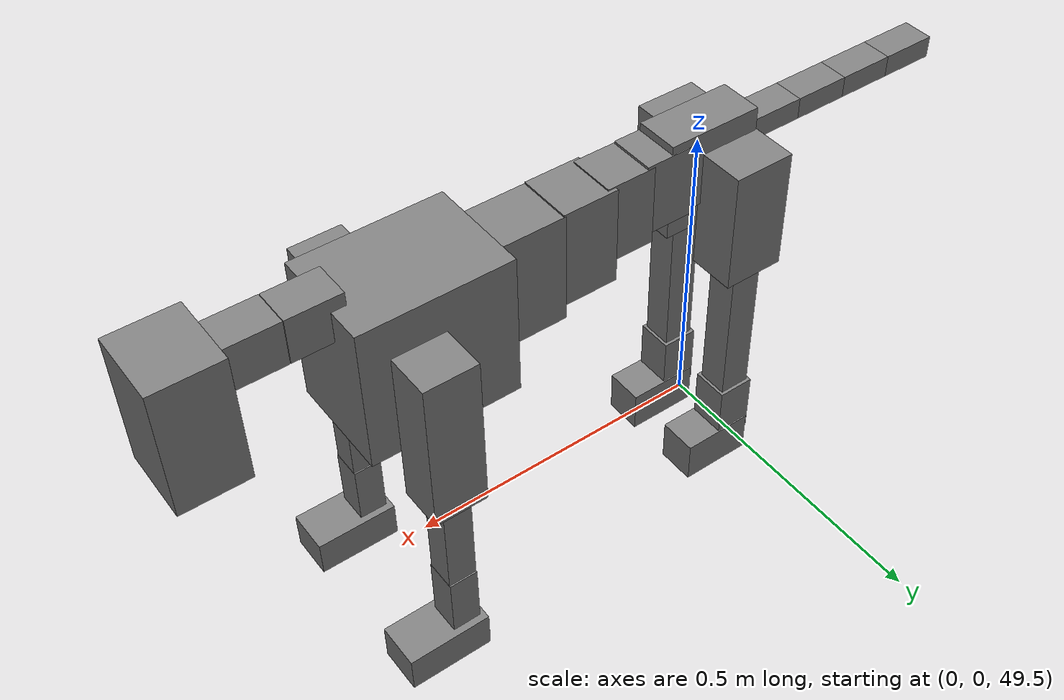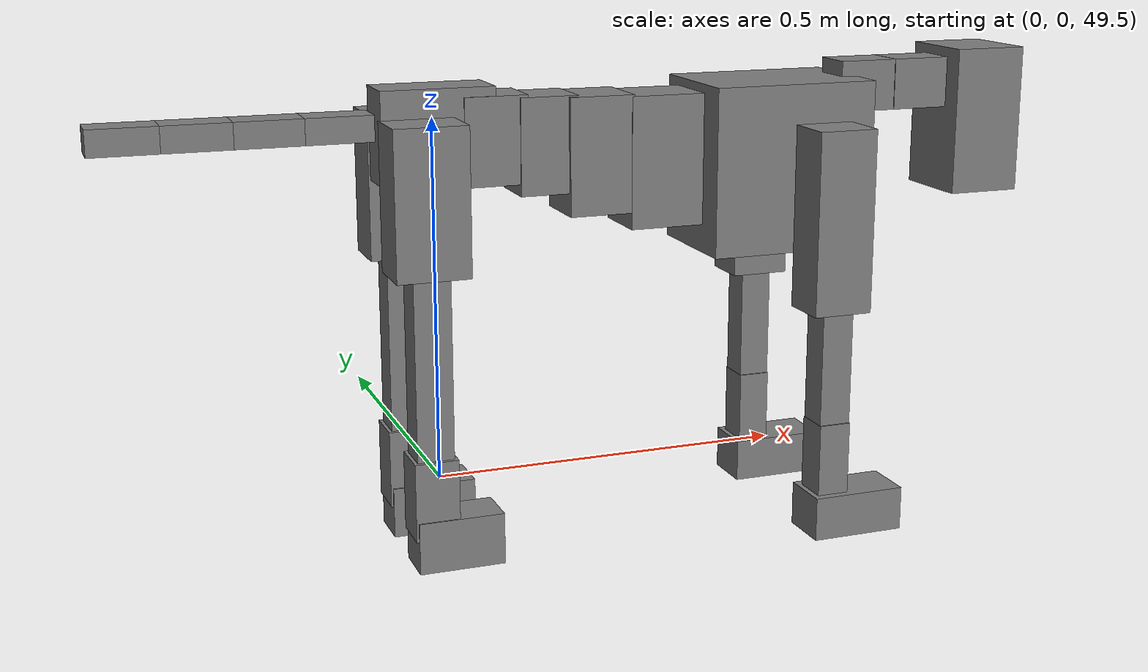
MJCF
<mujoco model="dog">

    <default>
        <joint armature="0.02" stiffness="1" damping="0.2" limited="true"/>
        <geom condim="3" friction="1 0.05 0.05" margin="0.01"/>
        <motor ctrllimited="true" ctrlrange="-1.0 1.0" forcelimited="true" gear="50"/>
    </default>

    <compiler inertiafromgeom="true" angle="radian"/>

    <option timestep="0.016" iterations="50" tolerance="1e-10" solver="Newton" jacobian="dense" cone="pyramidal"/>

    <size nconmax="20000" njmax="60000" nstack="5000000"/>
    <visual>
        <map force="0.1" zfar="30"/>
        <rgba haze="0.15 0.25 0.35 1"/>
        <quality shadowsize="2048"/>
        <global offwidth="800" offheight="800"/>
    </visual>

    <asset>
        <texture type="skybox" builtin="gradient" rgb1="0.3 0.5 0.7" rgb2="0 0 0" width="512" height="512"/>
        <texture name="texplane" type="2d" builtin="checker" rgb1=".2 .3 .4" rgb2=".1 0.15 0.2" width="512" height="512"
                 mark="cross" markrgb=".8 .8 .8"/>
        <texture name="texgeom" type="cube" builtin="flat" mark="cross" width="127" height="1278" rgb1="0.8 0.6 0.4"
                 rgb2="0.8 0.6 0.4" markrgb="1 1 1" random="0.01"/>

        <material name="matplane" reflectance="0.3" texture="texplane" texrepeat="1 1" texuniform="true"/>
        <material name="matgeom" texture="texgeom" texuniform="true" rgba="0.8 0.6 .4 1"/>
    </asset>

    <worldbody>
        <geom name="floor" pos="0 0 0" size="0 0 .25" type="plane" material="matplane" condim="3"/>

        <light directional="false" diffuse=".2 .2 .2" specular="0 0 0" pos="0 0 5" dir="0 0 -1" castshadow="false"/>
        <light mode="targetbodycom" target="torso" directional="false" diffuse=".8 .8 .8" specular="0.3 0.3 0.3"
               pos="0 0 4.0" dir="0 0 -1"/>

        <body name="root" pos="0 0 50">
            <freejoint name="root_1"/>
            <geom type="box" pos="0 0 -0.02" size="0.0774  0.0358  0.063" density="2030"/>

            <body name="spine1" pos="0.054 0 0">
                <joint name="spine1_y" axis="0 1 0" range="0 0.7" limited="true"/>
                <geom type="box" pos="0.02375 0 -0.03" size="0.04375  0.0375  0.05985" density="2030"/>

                <body name="spine2" pos="0.0612 0 0">
                    <joint name="spine2_y" axis="0 1 0" range="-0.15 0.15" limited="true"/>
                    <geom type="box" pos="0.03555  0  -0.04" size="0.04055  0.039  0.06615" density="2030"/>

                    <body name="spine3" pos="0.0730 0 0">
                        <joint name="spine3_y" axis="0 1 0" range="-0.15 0.15" limited="true"/>
                        <geom type="box" pos="0.03555  0  -0.057" size="0.04555  0.0445  0.081" density="2030"/>

                        <body name="spine4" pos="0.0780 0 0">
                            <joint name="spine4_y" axis="0 1 0" range="-0.15 0.15" limited="true"/>
                            <geom type="box" pos="0.05265  0  -0.07" size="0.05265  0.045  0.09135" density="2030"/>

                            <body name="torso" pos="0.1082 0 0">
                                <joint name="torso_y" axis="0 1 0" range="-0.15 0.15" limited="true"/>
                                <geom type="box" pos="0.11925  0  -0.085" size="0.11925  0.085  0.11745"
                                      density="2030"/>

                                <body name="neck1" pos="0.2160  0   0.0180">
                                    <joint name="neck1_y" axis="0 1 0" range="-1.2  -1" limited="true"/>
                                    <geom type="box" pos="0.0423  0  0" size="0.0423  0.03  0.036" density="2325"/>

                                    <body name="neck2" pos="0.0853  0  0">
                                        <joint name="neck2_y" axis="0 1 0" range="0.1  0" limited="true"/>
                                        <geom type="box" pos="0.0423  0  0" size="0.0423  0.03  0.036" density="2325"/>

                                        <body name="head" pos="0.0853  0  0">
                                            <joint name="head_y" axis="0 1 0" range="-0.3  -0.2" limited="true"/>
                                            <geom type="box" pos="0.0531  0  -0.055" size="0.0531  0.06  0.1044"
                                                  density="4030"/>

                                        </body>
                                    </body>
                                </body>

                                <body name="front_shoulder" pos="0.156  0   -0.0480">
                                    <joint name="front_shoulder_y" axis="0 1 0" range="-1 1.5" limited="true"/>
                                    <geom type="box" pos="0 0.13 -0.1009" size="0.0421  0.0360  0.1276" density="1158"/>
                                    <geom type="box" pos="0 -0.13 -0.1009" size="0.0421  0.0360  0.1276"
                                          density="1158"/>

                                    <body name="front_elbow" pos="0  0  -0.2019">
                                        <joint name="front_elbow_y" axis="0 1 0" range="-2 0" limited="true"/>
                                        <geom type="box" pos="0 0.13 -0.1004" size="0.0226  0.0231  0.1004"
                                              density="1081"/>
                                        <geom type="box" pos="0 -0.13 -0.1004" size="0.0226  0.0231  0.1004"
                                              density="1081"/>

                                        <body name="front_wrist" pos="0  0  -0.2009">
                                            <joint name="front_wrist_y" axis="0 1 0" range="-0.2 0" limited="true"/>
                                            <geom type="box" pos="0 0.13 -0.0522" size="0.0228  0.0254  0.0654"
                                                  density="1664"/>
                                            <geom type="box" pos="0 -0.13 -0.0522" size="0.0228  0.0254  0.0654"
                                                  density="1664"/>

                                            <body name="front_finger_end" pos="0  0  -0.1045">
                                                <joint name="front_finger_y" axis="0 1 0" range="-0.4 1"
                                                       limited="true"/>
                                                <geom type="box" pos="0.0367  0.13  -0.0160"
                                                      size="0.0673  0.0367  0.0310" density="1515"/>
                                                <geom type="box" pos="0.0367  -0.13  -0.0160"
                                                      size="0.0673  0.0367  0.0310" density="1515"/>

                                            </body>

                                        </body>
                                    </body>
                                </body>

                            </body>
                        </body>
                    </body>
                </body>
            </body>

            <body name="back_hip" pos="-0.03 0 -0.018">
                <joint name="back_hip_y" axis="0 1 0" range="-1.5 0.3" limited="true"/>
                <geom type="box" pos="0 0.07 -0.0769" size="0.0499  0.0391  0.0997" density="1154"/>
                <geom type="box" pos="0 -0.07 -0.0769" size="0.0499  0.0391  0.0997" density="1154"/>

                <body name="back_knee" pos="0  0  -0.1539">
                    <joint name="back_knee_y" axis="0 1 0" range="0 2.8" limited="true"/>
                    <geom type="box" pos="0 0.07 -0.1407" size="0.0253  0.0249  0.1563" density="1227"/>
                    <geom type="box" pos="0 -0.07 -0.1407" size="0.0253  0.0249  0.1563" density="1227"/>

                    <body name="back_ankle" pos="0  0  -0.2814">
                        <joint name="back_ankle_y" axis="0 1 0" range="-2.2 0" limited="true"/>
                        <geom type="box" pos="0 0.07 -0.0432" size="0.0302  0.0302  0.0545" density="1284"/>
                        <geom type="box" pos="0 -0.07 -0.0432" size="0.0302  0.0302  0.0545" density="1284"/>

                        <body name="back_toe_end" pos="0  0  -0.0865">
                            <joint name="back_toe_y" axis="0 1 0" range="-0.4 1" limited="true"/>
                            <geom type="box" pos="0.0323  0.07  -0.0208" size="0.0592  0.0323  0.0358" density="1515"/>
                            <geom type="box" pos="0.0323  -0.07  -0.0208" size="0.0592  0.0323  0.0358" density="1515"/>

                        </body>
                    </body>
                </body>
            </body>

            <body name="tail1" pos="-0.074 0 -0.006">
                <joint name="tail1_y" axis="0 1 0" range="-0.2 0.2" limited="true"/>
                <geom type="box" pos="-0.0536  0  0" size="0.045  0.025  0.0175" density="1587"/>

                <body name="tail2" pos="-0.09 0 0">
                    <joint name="tail2_y" axis="0 1 0" range="-0.2 0.2" limited="true"/>
                    <geom type="box" pos="-0.0536  0  0" size="0.045  0.025  0.0175" density="1587"/>

                    <body name="tail3" pos="-0.09 0 0">
                        <joint name="tail3_y" axis="0 1 0" range="-0.2 0.2" limited="true"/>
                        <geom type="box" pos="-0.0536  0  0" size="0.045  0.025  0.0175" density="1587"/>

                        <body name="tail4" pos="-0.09 0 0">
                            <joint name="tail4_y" axis="0 1 0" range="-0.2 0.2" limited="true"/>
                            <geom type="box" pos="-0.0536  0  0" size="0.045  0.025  0.0175" density="1587"/>

                        </body>
                    </body>
                </body>
            </body>
        </body>
    </worldbody>

    <actuator>
        <motor joint="spine1_y" forcerange="-150 150     "/>
        <motor joint="spine2_y" forcerange="-150 150     "/>
        <motor joint="spine3_y" forcerange="-150 150     "/>
        <motor joint="spine4_y" forcerange="-150 150     "/>
        <motor joint="torso_y" forcerange="-150 150     "/>
        <motor joint="neck1_y" forcerange="-100 100       "/>
        <motor joint="neck2_y" forcerange="-100 100       "/>
        <motor joint="head_y" forcerange="-150 150       "/>
        <motor joint="front_shoulder_y" forcerange="-169.91 170.17"/>
        <motor joint="front_elbow_y" forcerange="-143.97 124.04"/>
        <motor joint="front_wrist_y" forcerange="-143.35 59.54"/>
        <motor joint="front_finger_y" forcerange="-93.90 61.79"/>
        <motor joint="back_hip_y" forcerange="-348.13 373.23"/>
        <motor joint="back_knee_y" forcerange="-303.86 258.25"/>
        <motor joint="back_angle_y" forcerange="-136.06 246.60"/>
        <motor joint="back_toe_y" forcerange="-62.35 115.78"/>
        <motor joint="tail1_y" forcerange="-50 50     "/>
        <motor joint="tail2_y" forcerange="-50 50     "/>
        <motor joint="tail3_y" forcerange="-50 50     "/>
        <motor joint="tail4_y" forcerange="-50 50     "/>
    </actuator>
</mujoco>
